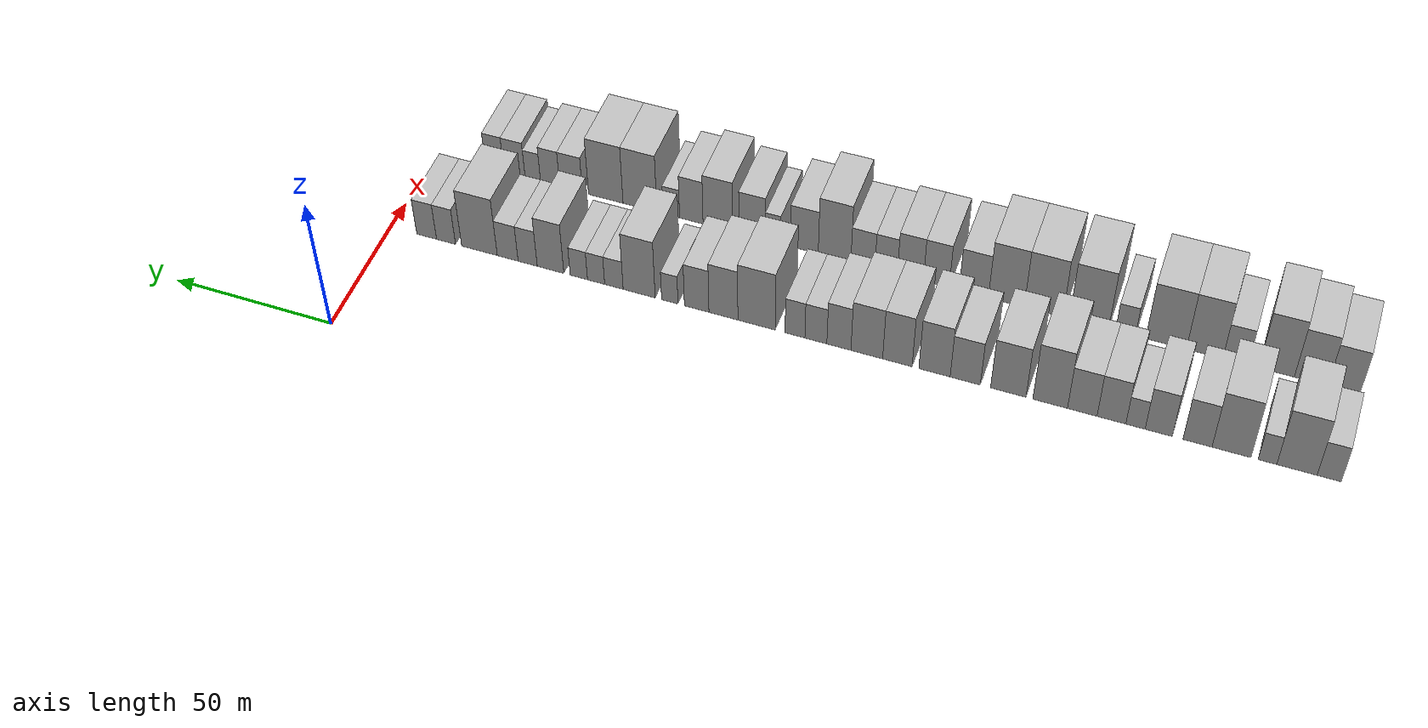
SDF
<sdf version="1.6">
 <world name="default">
  <model name="building_1">
   <static>1</static>
   <pose>50.0000 -280.7285 0 0.000000 0.000000 0.000000</pose>
   <link name="link">
    <pose>0 0 7.50 0 0 0</pose>
    <collision name="collision"><geometry><box><size>20.0000 6.5430 15.0000</size></box></geometry></collision>
    <visual name="visual">
     <cast_shadows>0</cast_shadows>
     <geometry><box><size>20.0000 6.5430 15.0000</size></box></geometry>
     <material>
      <script>
       <uri>model://HANNAS_wall/materials/scripts</uri>
       <uri>model://HANNAS_wall/materials/textures</uri>
       <name>vrc/HANNAS_wall</name>
      </script>
     </material>
    </visual>
   </link>
  </model>
  <model name="building_2">
   <static>1</static>
   <pose>50.0000 -271.9288 0 0.000000 0.000000 0.000000</pose>
   <link name="link">
    <pose>0 0 12.00 0 0 0</pose>
    <collision name="collision"><geometry><box><size>20.0000 11.0564 24.0000</size></box></geometry></collision>
    <visual name="visual">
     <cast_shadows>0</cast_shadows>
     <geometry><box><size>20.0000 11.0564 24.0000</size></box></geometry>
     <material>
      <script>
       <uri>model://HANNAS_wall/materials/scripts</uri>
       <uri>model://HANNAS_wall/materials/textures</uri>
       <name>vrc/HANNAS_wall</name>
      </script>
     </material>
    </visual>
   </link>
  </model>
  <model name="building_3">
   <static>1</static>
   <pose>50.0000 -263.8461 0 0.000000 0.000000 0.000000</pose>
   <link name="link">
    <pose>0 0 6.00 0 0 0</pose>
    <collision name="collision"><geometry><box><size>20.0000 5.1090 12.0000</size></box></geometry></collision>
    <visual name="visual">
     <cast_shadows>0</cast_shadows>
     <geometry><box><size>20.0000 5.1090 12.0000</size></box></geometry>
     <material>
      <script>
       <uri>model://HANNAS_wall/materials/scripts</uri>
       <uri>model://HANNAS_wall/materials/textures</uri>
       <name>vrc/HANNAS_wall</name>
      </script>
     </material>
    </visual>
   </link>
  </model>
  <model name="building_4">
   <static>1</static>
   <pose>50.0000 -253.8942 0 0.000000 0.000000 0.000000</pose>
   <link name="link">
    <pose>0 0 12.00 0 0 0</pose>
    <collision name="collision"><geometry><box><size>20.0000 10.7950 24.0000</size></box></geometry></collision>
    <visual name="visual">
     <cast_shadows>0</cast_shadows>
     <geometry><box><size>20.0000 10.7950 24.0000</size></box></geometry>
     <material>
      <script>
       <uri>model://HANNAS_wall/materials/scripts</uri>
       <uri>model://HANNAS_wall/materials/textures</uri>
       <name>vrc/HANNAS_wall</name>
      </script>
     </material>
    </visual>
   </link>
  </model>
  <model name="building_5">
   <static>1</static>
   <pose>50.0000 -244.4497 0 0.000000 0.000000 0.000000</pose>
   <link name="link">
    <pose>0 0 9.00 0 0 0</pose>
    <collision name="collision"><geometry><box><size>20.0000 8.0939 18.0000</size></box></geometry></collision>
    <visual name="visual">
     <cast_shadows>0</cast_shadows>
     <geometry><box><size>20.0000 8.0939 18.0000</size></box></geometry>
     <material>
      <script>
       <uri>model://HANNAS_wall/materials/scripts</uri>
       <uri>model://HANNAS_wall/materials/textures</uri>
       <name>vrc/HANNAS_wall</name>
      </script>
     </material>
    </visual>
   </link>
  </model>
  <model name="building_6">
   <static>1</static>
   <pose>50.0000 -233.5920 0 0.000000 0.000000 0.000000</pose>
   <link name="link">
    <pose>0 0 9.00 0 0 0</pose>
    <collision name="collision"><geometry><box><size>20.0000 7.6216 18.0000</size></box></geometry></collision>
    <visual name="visual">
     <cast_shadows>0</cast_shadows>
     <geometry><box><size>20.0000 7.6216 18.0000</size></box></geometry>
     <material>
      <script>
       <uri>model://HANNAS_wall/materials/scripts</uri>
       <uri>model://HANNAS_wall/materials/textures</uri>
       <name>vrc/HANNAS_wall</name>
      </script>
     </material>
    </visual>
   </link>
  </model>
  <model name="building_7">
   <static>1</static>
   <pose>50.0000 -227.0531 0 0.000000 0.000000 0.000000</pose>
   <link name="link">
    <pose>0 0 6.00 0 0 0</pose>
    <collision name="collision"><geometry><box><size>20.0000 5.4563 12.0000</size></box></geometry></collision>
    <visual name="visual">
     <cast_shadows>0</cast_shadows>
     <geometry><box><size>20.0000 5.4563 12.0000</size></box></geometry>
     <material>
      <script>
       <uri>model://HANNAS_wall/materials/scripts</uri>
       <uri>model://HANNAS_wall/materials/textures</uri>
       <name>vrc/HANNAS_wall</name>
      </script>
     </material>
    </visual>
   </link>
  </model>
  <model name="building_8">
   <static>1</static>
   <pose>50.0000 -220.2378 0 0.000000 0.000000 0.000000</pose>
   <link name="link">
    <pose>0 0 9.00 0 0 0</pose>
    <collision name="collision"><geometry><box><size>20.0000 8.1742 18.0000</size></box></geometry></collision>
    <visual name="visual">
     <cast_shadows>0</cast_shadows>
     <geometry><box><size>20.0000 8.1742 18.0000</size></box></geometry>
     <material>
      <script>
       <uri>model://HANNAS_wall/materials/scripts</uri>
       <uri>model://HANNAS_wall/materials/textures</uri>
       <name>vrc/HANNAS_wall</name>
      </script>
     </material>
    </visual>
   </link>
  </model>
  <model name="building_9">
   <static>1</static>
   <pose>50.0000 -211.9330 0 0.000000 0.000000 0.000000</pose>
   <link name="link">
    <pose>0 0 9.00 0 0 0</pose>
    <collision name="collision"><geometry><box><size>20.0000 8.4355 18.0000</size></box></geometry></collision>
    <visual name="visual">
     <cast_shadows>0</cast_shadows>
     <geometry><box><size>20.0000 8.4355 18.0000</size></box></geometry>
     <material>
      <script>
       <uri>model://HANNAS_wall/materials/scripts</uri>
       <uri>model://HANNAS_wall/materials/textures</uri>
       <name>vrc/HANNAS_wall</name>
      </script>
     </material>
    </visual>
   </link>
  </model>
  <model name="building_10">
   <static>1</static>
   <pose>50.0000 -202.7415 0 0.000000 0.000000 0.000000</pose>
   <link name="link">
    <pose>0 0 12.00 0 0 0</pose>
    <collision name="collision"><geometry><box><size>20.0000 9.9475 24.0000</size></box></geometry></collision>
    <visual name="visual">
     <cast_shadows>0</cast_shadows>
     <geometry><box><size>20.0000 9.9475 24.0000</size></box></geometry>
     <material>
      <script>
       <uri>model://HANNAS_wall/materials/scripts</uri>
       <uri>model://HANNAS_wall/materials/textures</uri>
       <name>vrc/HANNAS_wall</name>
      </script>
     </material>
    </visual>
   </link>
  </model>
  <model name="building_11">
   <static>1</static>
   <pose>50.0000 -190.6426 0 0.000000 0.000000 0.000000</pose>
   <link name="link">
    <pose>0 0 10.50 0 0 0</pose>
    <collision name="collision"><geometry><box><size>20.0000 10.2502 21.0000</size></box></geometry></collision>
    <visual name="visual">
     <cast_shadows>0</cast_shadows>
     <geometry><box><size>20.0000 10.2502 21.0000</size></box></geometry>
     <material>
      <script>
       <uri>model://HANNAS_wall/materials/scripts</uri>
       <uri>model://HANNAS_wall/materials/textures</uri>
       <name>vrc/HANNAS_wall</name>
      </script>
     </material>
    </visual>
   </link>
  </model>
  <model name="building_12">
   <static>1</static>
   <pose>50.0000 -178.1155 0 0.000000 0.000000 0.000000</pose>
   <link name="link">
    <pose>0 0 9.00 0 0 0</pose>
    <collision name="collision"><geometry><box><size>20.0000 8.8040 18.0000</size></box></geometry></collision>
    <visual name="visual">
     <cast_shadows>0</cast_shadows>
     <geometry><box><size>20.0000 8.8040 18.0000</size></box></geometry>
     <material>
      <script>
       <uri>model://HANNAS_wall/materials/scripts</uri>
       <uri>model://HANNAS_wall/materials/textures</uri>
       <name>vrc/HANNAS_wall</name>
      </script>
     </material>
    </visual>
   </link>
  </model>
  <model name="building_13">
   <static>1</static>
   <pose>50.0000 -169.1064 0 0.000000 0.000000 0.000000</pose>
   <link name="link">
    <pose>0 0 10.50 0 0 0</pose>
    <collision name="collision"><geometry><box><size>20.0000 9.2141 21.0000</size></box></geometry></collision>
    <visual name="visual">
     <cast_shadows>0</cast_shadows>
     <geometry><box><size>20.0000 9.2141 21.0000</size></box></geometry>
     <material>
      <script>
       <uri>model://HANNAS_wall/materials/scripts</uri>
       <uri>model://HANNAS_wall/materials/textures</uri>
       <name>vrc/HANNAS_wall</name>
      </script>
     </material>
    </visual>
   </link>
  </model>
  <model name="building_14">
   <static>1</static>
   <pose>50.0000 -158.1400 0 0.000000 0.000000 0.000000</pose>
   <link name="link">
    <pose>0 0 10.50 0 0 0</pose>
    <collision name="collision"><geometry><box><size>20.0000 8.7185 21.0000</size></box></geometry></collision>
    <visual name="visual">
     <cast_shadows>0</cast_shadows>
     <geometry><box><size>20.0000 8.7185 21.0000</size></box></geometry>
     <material>
      <script>
       <uri>model://HANNAS_wall/materials/scripts</uri>
       <uri>model://HANNAS_wall/materials/textures</uri>
       <name>vrc/HANNAS_wall</name>
      </script>
     </material>
    </visual>
   </link>
  </model>
  <model name="building_15">
   <static>1</static>
   <pose>50.0000 -149.0470 0 0.000000 0.000000 0.000000</pose>
   <link name="link">
    <pose>0 0 10.50 0 0 0</pose>
    <collision name="collision"><geometry><box><size>20.0000 9.4675 21.0000</size></box></geometry></collision>
    <visual name="visual">
     <cast_shadows>0</cast_shadows>
     <geometry><box><size>20.0000 9.4675 21.0000</size></box></geometry>
     <material>
      <script>
       <uri>model://HANNAS_wall/materials/scripts</uri>
       <uri>model://HANNAS_wall/materials/textures</uri>
       <name>vrc/HANNAS_wall</name>
      </script>
     </material>
    </visual>
   </link>
  </model>
  <model name="building_16">
   <static>1</static>
   <pose>50.0000 -140.7030 0 0.000000 0.000000 0.000000</pose>
   <link name="link">
    <pose>0 0 9.00 0 0 0</pose>
    <collision name="collision"><geometry><box><size>20.0000 7.2206 18.0000</size></box></geometry></collision>
    <visual name="visual">
     <cast_shadows>0</cast_shadows>
     <geometry><box><size>20.0000 7.2206 18.0000</size></box></geometry>
     <material>
      <script>
       <uri>model://HANNAS_wall/materials/scripts</uri>
       <uri>model://HANNAS_wall/materials/textures</uri>
       <name>vrc/HANNAS_wall</name>
      </script>
     </material>
    </visual>
   </link>
  </model>
  <model name="building_17">
   <static>1</static>
   <pose>50.0000 -133.7853 0 0.000000 0.000000 0.000000</pose>
   <link name="link">
    <pose>0 0 7.50 0 0 0</pose>
    <collision name="collision"><geometry><box><size>20.0000 6.6148 15.0000</size></box></geometry></collision>
    <visual name="visual">
     <cast_shadows>0</cast_shadows>
     <geometry><box><size>20.0000 6.6148 15.0000</size></box></geometry>
     <material>
      <script>
       <uri>model://HANNAS_wall/materials/scripts</uri>
       <uri>model://HANNAS_wall/materials/textures</uri>
       <name>vrc/HANNAS_wall</name>
      </script>
     </material>
    </visual>
   </link>
  </model>
  <model name="building_18">
   <static>1</static>
   <pose>50.0000 -127.4758 0 0.000000 0.000000 0.000000</pose>
   <link name="link">
    <pose>0 0 7.50 0 0 0</pose>
    <collision name="collision"><geometry><box><size>20.0000 6.0041 15.0000</size></box></geometry></collision>
    <visual name="visual">
     <cast_shadows>0</cast_shadows>
     <geometry><box><size>20.0000 6.0041 15.0000</size></box></geometry>
     <material>
      <script>
       <uri>model://HANNAS_wall/materials/scripts</uri>
       <uri>model://HANNAS_wall/materials/textures</uri>
       <name>vrc/HANNAS_wall</name>
      </script>
     </material>
    </visual>
   </link>
  </model>
  <model name="building_19">
   <static>1</static>
   <pose>50.0000 -115.7782 0 0.000000 0.000000 0.000000</pose>
   <link name="link">
    <pose>0 0 12.00 0 0 0</pose>
    <collision name="collision"><geometry><box><size>20.0000 11.3912 24.0000</size></box></geometry></collision>
    <visual name="visual">
     <cast_shadows>0</cast_shadows>
     <geometry><box><size>20.0000 11.3912 24.0000</size></box></geometry>
     <material>
      <script>
       <uri>model://HANNAS_wall/materials/scripts</uri>
       <uri>model://HANNAS_wall/materials/textures</uri>
       <name>vrc/HANNAS_wall</name>
      </script>
     </material>
    </visual>
   </link>
  </model>
  <model name="building_20">
   <static>1</static>
   <pose>50.0000 -105.6370 0 0.000000 0.000000 0.000000</pose>
   <link name="link">
    <pose>0 0 10.50 0 0 0</pose>
    <collision name="collision"><geometry><box><size>20.0000 8.8911 21.0000</size></box></geometry></collision>
    <visual name="visual">
     <cast_shadows>0</cast_shadows>
     <geometry><box><size>20.0000 8.8911 21.0000</size></box></geometry>
     <material>
      <script>
       <uri>model://HANNAS_wall/materials/scripts</uri>
       <uri>model://HANNAS_wall/materials/textures</uri>
       <name>vrc/HANNAS_wall</name>
      </script>
     </material>
    </visual>
   </link>
  </model>
  <model name="building_21">
   <static>1</static>
   <pose>50.0000 -97.4049 0 0.000000 0.000000 0.000000</pose>
   <link name="link">
    <pose>0 0 9.00 0 0 0</pose>
    <collision name="collision"><geometry><box><size>20.0000 7.5730 18.0000</size></box></geometry></collision>
    <visual name="visual">
     <cast_shadows>0</cast_shadows>
     <geometry><box><size>20.0000 7.5730 18.0000</size></box></geometry>
     <material>
      <script>
       <uri>model://HANNAS_wall/materials/scripts</uri>
       <uri>model://HANNAS_wall/materials/textures</uri>
       <name>vrc/HANNAS_wall</name>
      </script>
     </material>
    </visual>
   </link>
  </model>
  <model name="building_22">
   <static>1</static>
   <pose>50.0000 -89.0741 0 0.000000 0.000000 0.000000</pose>
   <link name="link">
    <pose>0 0 6.00 0 0 0</pose>
    <collision name="collision"><geometry><box><size>20.0000 5.0886 12.0000</size></box></geometry></collision>
    <visual name="visual">
     <cast_shadows>0</cast_shadows>
     <geometry><box><size>20.0000 5.0886 12.0000</size></box></geometry>
     <material>
      <script>
       <uri>model://HANNAS_wall/materials/scripts</uri>
       <uri>model://HANNAS_wall/materials/textures</uri>
       <name>vrc/HANNAS_wall</name>
      </script>
     </material>
    </visual>
   </link>
  </model>
  <model name="building_23">
   <static>1</static>
   <pose>50.0000 -79.5198 0 0.000000 0.000000 0.000000</pose>
   <link name="link">
    <pose>0 0 12.00 0 0 0</pose>
    <collision name="collision"><geometry><box><size>20.0000 10.0201 24.0000</size></box></geometry></collision>
    <visual name="visual">
     <cast_shadows>0</cast_shadows>
     <geometry><box><size>20.0000 10.0201 24.0000</size></box></geometry>
     <material>
      <script>
       <uri>model://HANNAS_wall/materials/scripts</uri>
       <uri>model://HANNAS_wall/materials/textures</uri>
       <name>vrc/HANNAS_wall</name>
      </script>
     </material>
    </visual>
   </link>
  </model>
  <model name="building_24">
   <static>1</static>
   <pose>50.0000 -71.6095 0 0.000000 0.000000 0.000000</pose>
   <link name="link">
    <pose>0 0 6.00 0 0 0</pose>
    <collision name="collision"><geometry><box><size>20.0000 5.8004 12.0000</size></box></geometry></collision>
    <visual name="visual">
     <cast_shadows>0</cast_shadows>
     <geometry><box><size>20.0000 5.8004 12.0000</size></box></geometry>
     <material>
      <script>
       <uri>model://HANNAS_wall/materials/scripts</uri>
       <uri>model://HANNAS_wall/materials/textures</uri>
       <name>vrc/HANNAS_wall</name>
      </script>
     </material>
    </visual>
   </link>
  </model>
  <model name="building_25">
   <static>1</static>
   <pose>50.0000 -65.9958 0 0.000000 0.000000 0.000000</pose>
   <link name="link">
    <pose>0 0 6.00 0 0 0</pose>
    <collision name="collision"><geometry><box><size>20.0000 5.4270 12.0000</size></box></geometry></collision>
    <visual name="visual">
     <cast_shadows>0</cast_shadows>
     <geometry><box><size>20.0000 5.4270 12.0000</size></box></geometry>
     <material>
      <script>
       <uri>model://HANNAS_wall/materials/scripts</uri>
       <uri>model://HANNAS_wall/materials/textures</uri>
       <name>vrc/HANNAS_wall</name>
      </script>
     </material>
    </visual>
   </link>
  </model>
  <model name="building_26">
   <static>1</static>
   <pose>50.0000 -60.5416 0 0.000000 0.000000 0.000000</pose>
   <link name="link">
    <pose>0 0 6.00 0 0 0</pose>
    <collision name="collision"><geometry><box><size>20.0000 5.4814 12.0000</size></box></geometry></collision>
    <visual name="visual">
     <cast_shadows>0</cast_shadows>
     <geometry><box><size>20.0000 5.4814 12.0000</size></box></geometry>
     <material>
      <script>
       <uri>model://HANNAS_wall/materials/scripts</uri>
       <uri>model://HANNAS_wall/materials/textures</uri>
       <name>vrc/HANNAS_wall</name>
      </script>
     </material>
    </visual>
   </link>
  </model>
  <model name="building_27">
   <static>1</static>
   <pose>50.0000 -51.5552 0 0.000000 0.000000 0.000000</pose>
   <link name="link">
    <pose>0 0 10.50 0 0 0</pose>
    <collision name="collision"><geometry><box><size>20.0000 8.4914 21.0000</size></box></geometry></collision>
    <visual name="visual">
     <cast_shadows>0</cast_shadows>
     <geometry><box><size>20.0000 8.4914 21.0000</size></box></geometry>
     <material>
      <script>
       <uri>model://HANNAS_wall/materials/scripts</uri>
       <uri>model://HANNAS_wall/materials/textures</uri>
       <name>vrc/HANNAS_wall</name>
      </script>
     </material>
    </visual>
   </link>
  </model>
  <model name="building_28">
   <static>1</static>
   <pose>50.0000 -44.2493 0 0.000000 0.000000 0.000000</pose>
   <link name="link">
    <pose>0 0 7.50 0 0 0</pose>
    <collision name="collision"><geometry><box><size>20.0000 6.1206 15.0000</size></box></geometry></collision>
    <visual name="visual">
     <cast_shadows>0</cast_shadows>
     <geometry><box><size>20.0000 6.1206 15.0000</size></box></geometry>
     <material>
      <script>
       <uri>model://HANNAS_wall/materials/scripts</uri>
       <uri>model://HANNAS_wall/materials/textures</uri>
       <name>vrc/HANNAS_wall</name>
      </script>
     </material>
    </visual>
   </link>
  </model>
  <model name="building_29">
   <static>1</static>
   <pose>50.0000 -37.8376 0 0.000000 0.000000 0.000000</pose>
   <link name="link">
    <pose>0 0 7.50 0 0 0</pose>
    <collision name="collision"><geometry><box><size>20.0000 6.7027 15.0000</size></box></geometry></collision>
    <visual name="visual">
     <cast_shadows>0</cast_shadows>
     <geometry><box><size>20.0000 6.7027 15.0000</size></box></geometry>
     <material>
      <script>
       <uri>model://HANNAS_wall/materials/scripts</uri>
       <uri>model://HANNAS_wall/materials/textures</uri>
       <name>vrc/HANNAS_wall</name>
      </script>
     </material>
    </visual>
   </link>
  </model>
  <model name="building_30">
   <static>1</static>
   <pose>50.0000 -28.7276 0 0.000000 0.000000 0.000000</pose>
   <link name="link">
    <pose>0 0 12.00 0 0 0</pose>
    <collision name="collision"><geometry><box><size>20.0000 11.5173 24.0000</size></box></geometry></collision>
    <visual name="visual">
     <cast_shadows>0</cast_shadows>
     <geometry><box><size>20.0000 11.5173 24.0000</size></box></geometry>
     <material>
      <script>
       <uri>model://HANNAS_wall/materials/scripts</uri>
       <uri>model://HANNAS_wall/materials/textures</uri>
       <name>vrc/HANNAS_wall</name>
      </script>
     </material>
    </visual>
   </link>
  </model>
  <model name="building_31">
   <static>1</static>
   <pose>50.0000 -17.8754 0 0.000000 0.000000 0.000000</pose>
   <link name="link">
    <pose>0 0 7.50 0 0 0</pose>
    <collision name="collision"><geometry><box><size>20.0000 6.1872 15.0000</size></box></geometry></collision>
    <visual name="visual">
     <cast_shadows>0</cast_shadows>
     <geometry><box><size>20.0000 6.1872 15.0000</size></box></geometry>
     <material>
      <script>
       <uri>model://HANNAS_wall/materials/scripts</uri>
       <uri>model://HANNAS_wall/materials/textures</uri>
       <name>vrc/HANNAS_wall</name>
      </script>
     </material>
    </visual>
   </link>
  </model>
  <model name="building_32">
   <static>1</static>
   <pose>50.0000 -11.5547 0 0.000000 0.000000 0.000000</pose>
   <link name="link">
    <pose>0 0 7.50 0 0 0</pose>
    <collision name="collision"><geometry><box><size>20.0000 6.4543 15.0000</size></box></geometry></collision>
    <visual name="visual">
     <cast_shadows>0</cast_shadows>
     <geometry><box><size>20.0000 6.4543 15.0000</size></box></geometry>
     <material>
      <script>
       <uri>model://HANNAS_wall/materials/scripts</uri>
       <uri>model://HANNAS_wall/materials/textures</uri>
       <name>vrc/HANNAS_wall</name>
      </script>
     </material>
    </visual>
   </link>
  </model>
  <model name="building_63">
   <static>1</static>
   <pose>82.0000 -279.5156 0 0.000000 0.000000 0.000000</pose>
   <link name="link">
    <pose>0 0 9.00 0 0 0</pose>
    <collision name="collision"><geometry><box><size>20.0000 8.9687 18.0000</size></box></geometry></collision>
    <visual name="visual">
     <cast_shadows>0</cast_shadows>
     <geometry><box><size>20.0000 8.9687 18.0000</size></box></geometry>
     <material>
      <script>
       <uri>model://HANNAS_wall/materials/scripts</uri>
       <uri>model://HANNAS_wall/materials/textures</uri>
       <name>vrc/HANNAS_wall</name>
      </script>
     </material>
    </visual>
   </link>
  </model>
  <model name="building_64">
   <static>1</static>
   <pose>82.0000 -270.2996 0 0.000000 0.000000 0.000000</pose>
   <link name="link">
    <pose>0 0 10.50 0 0 0</pose>
    <collision name="collision"><geometry><box><size>20.0000 9.4635 21.0000</size></box></geometry></collision>
    <visual name="visual">
     <cast_shadows>0</cast_shadows>
     <geometry><box><size>20.0000 9.4635 21.0000</size></box></geometry>
     <material>
      <script>
       <uri>model://HANNAS_wall/materials/scripts</uri>
       <uri>model://HANNAS_wall/materials/textures</uri>
       <name>vrc/HANNAS_wall</name>
      </script>
     </material>
    </visual>
   </link>
  </model>
  <model name="building_65">
   <static>1</static>
   <pose>82.0000 -260.5115 0 0.000000 0.000000 0.000000</pose>
   <link name="link">
    <pose>0 0 12.00 0 0 0</pose>
    <collision name="collision"><geometry><box><size>20.0000 10.1127 24.0000</size></box></geometry></collision>
    <visual name="visual">
     <cast_shadows>0</cast_shadows>
     <geometry><box><size>20.0000 10.1127 24.0000</size></box></geometry>
     <material>
      <script>
       <uri>model://HANNAS_wall/materials/scripts</uri>
       <uri>model://HANNAS_wall/materials/textures</uri>
       <name>vrc/HANNAS_wall</name>
      </script>
     </material>
    </visual>
   </link>
  </model>
  <model name="building_66">
   <static>1</static>
   <pose>82.0000 -248.8087 0 0.000000 0.000000 0.000000</pose>
   <link name="link">
    <pose>0 0 7.50 0 0 0</pose>
    <collision name="collision"><geometry><box><size>20.0000 7.2929 15.0000</size></box></geometry></collision>
    <visual name="visual">
     <cast_shadows>0</cast_shadows>
     <geometry><box><size>20.0000 7.2929 15.0000</size></box></geometry>
     <material>
      <script>
       <uri>model://HANNAS_wall/materials/scripts</uri>
       <uri>model://HANNAS_wall/materials/textures</uri>
       <name>vrc/HANNAS_wall</name>
      </script>
     </material>
    </visual>
   </link>
  </model>
  <model name="building_67">
   <static>1</static>
   <pose>82.0000 -239.9047 0 0.000000 0.000000 0.000000</pose>
   <link name="link">
    <pose>0 0 12.00 0 0 0</pose>
    <collision name="collision"><geometry><box><size>20.0000 10.5150 24.0000</size></box></geometry></collision>
    <visual name="visual">
     <cast_shadows>0</cast_shadows>
     <geometry><box><size>20.0000 10.5150 24.0000</size></box></geometry>
     <material>
      <script>
       <uri>model://HANNAS_wall/materials/scripts</uri>
       <uri>model://HANNAS_wall/materials/textures</uri>
       <name>vrc/HANNAS_wall</name>
      </script>
     </material>
    </visual>
   </link>
  </model>
  <model name="building_68">
   <static>1</static>
   <pose>82.0000 -228.7389 0 0.000000 0.000000 0.000000</pose>
   <link name="link">
    <pose>0 0 12.00 0 0 0</pose>
    <collision name="collision"><geometry><box><size>20.0000 11.8166 24.0000</size></box></geometry></collision>
    <visual name="visual">
     <cast_shadows>0</cast_shadows>
     <geometry><box><size>20.0000 11.8166 24.0000</size></box></geometry>
     <material>
      <script>
       <uri>model://HANNAS_wall/materials/scripts</uri>
       <uri>model://HANNAS_wall/materials/textures</uri>
       <name>vrc/HANNAS_wall</name>
      </script>
     </material>
    </visual>
   </link>
  </model>
  <model name="building_69">
   <static>1</static>
   <pose>82.0000 -216.9084 0 0.000000 0.000000 0.000000</pose>
   <link name="link">
    <pose>0 0 6.00 0 0 0</pose>
    <collision name="collision"><geometry><box><size>20.0000 5.8445 12.0000</size></box></geometry></collision>
    <visual name="visual">
     <cast_shadows>0</cast_shadows>
     <geometry><box><size>20.0000 5.8445 12.0000</size></box></geometry>
     <material>
      <script>
       <uri>model://HANNAS_wall/materials/scripts</uri>
       <uri>model://HANNAS_wall/materials/textures</uri>
       <name>vrc/HANNAS_wall</name>
      </script>
     </material>
    </visual>
   </link>
  </model>
  <model name="building_70">
   <static>1</static>
   <pose>82.0000 -206.1798 0 0.000000 0.000000 0.000000</pose>
   <link name="link">
    <pose>0 0 12.00 0 0 0</pose>
    <collision name="collision"><geometry><box><size>20.0000 11.6127 24.0000</size></box></geometry></collision>
    <visual name="visual">
     <cast_shadows>0</cast_shadows>
     <geometry><box><size>20.0000 11.6127 24.0000</size></box></geometry>
     <material>
      <script>
       <uri>model://HANNAS_wall/materials/scripts</uri>
       <uri>model://HANNAS_wall/materials/textures</uri>
       <name>vrc/HANNAS_wall</name>
      </script>
     </material>
    </visual>
   </link>
  </model>
  <model name="building_71">
   <static>1</static>
   <pose>82.0000 -192.6436 0 0.000000 0.000000 0.000000</pose>
   <link name="link">
    <pose>0 0 12.00 0 0 0</pose>
    <collision name="collision"><geometry><box><size>20.0000 11.4597 24.0000</size></box></geometry></collision>
    <visual name="visual">
     <cast_shadows>0</cast_shadows>
     <geometry><box><size>20.0000 11.4597 24.0000</size></box></geometry>
     <material>
      <script>
       <uri>model://HANNAS_wall/materials/scripts</uri>
       <uri>model://HANNAS_wall/materials/textures</uri>
       <name>vrc/HANNAS_wall</name>
      </script>
     </material>
    </visual>
   </link>
  </model>
  <model name="building_72">
   <static>1</static>
   <pose>82.0000 -181.5321 0 0.000000 0.000000 0.000000</pose>
   <link name="link">
    <pose>0 0 12.00 0 0 0</pose>
    <collision name="collision"><geometry><box><size>20.0000 10.7633 24.0000</size></box></geometry></collision>
    <visual name="visual">
     <cast_shadows>0</cast_shadows>
     <geometry><box><size>20.0000 10.7633 24.0000</size></box></geometry>
     <material>
      <script>
       <uri>model://HANNAS_wall/materials/scripts</uri>
       <uri>model://HANNAS_wall/materials/textures</uri>
       <name>vrc/HANNAS_wall</name>
      </script>
     </material>
    </visual>
   </link>
  </model>
  <model name="building_73">
   <static>1</static>
   <pose>82.0000 -171.7453 0 0.000000 0.000000 0.000000</pose>
   <link name="link">
    <pose>0 0 9.00 0 0 0</pose>
    <collision name="collision"><geometry><box><size>20.0000 8.8104 18.0000</size></box></geometry></collision>
    <visual name="visual">
     <cast_shadows>0</cast_shadows>
     <geometry><box><size>20.0000 8.8104 18.0000</size></box></geometry>
     <material>
      <script>
       <uri>model://HANNAS_wall/materials/scripts</uri>
       <uri>model://HANNAS_wall/materials/textures</uri>
       <name>vrc/HANNAS_wall</name>
      </script>
     </material>
    </visual>
   </link>
  </model>
  <model name="building_74">
   <static>1</static>
   <pose>82.0000 -160.4064 0 0.000000 0.000000 0.000000</pose>
   <link name="link">
    <pose>0 0 9.00 0 0 0</pose>
    <collision name="collision"><geometry><box><size>20.0000 7.8674 18.0000</size></box></geometry></collision>
    <visual name="visual">
     <cast_shadows>0</cast_shadows>
     <geometry><box><size>20.0000 7.8674 18.0000</size></box></geometry>
     <material>
      <script>
       <uri>model://HANNAS_wall/materials/scripts</uri>
       <uri>model://HANNAS_wall/materials/textures</uri>
       <name>vrc/HANNAS_wall</name>
      </script>
     </material>
    </visual>
   </link>
  </model>
  <model name="building_75">
   <static>1</static>
   <pose>82.0000 -152.4900 0 0.000000 0.000000 0.000000</pose>
   <link name="link">
    <pose>0 0 9.00 0 0 0</pose>
    <collision name="collision"><geometry><box><size>20.0000 7.9653 18.0000</size></box></geometry></collision>
    <visual name="visual">
     <cast_shadows>0</cast_shadows>
     <geometry><box><size>20.0000 7.9653 18.0000</size></box></geometry>
     <material>
      <script>
       <uri>model://HANNAS_wall/materials/scripts</uri>
       <uri>model://HANNAS_wall/materials/textures</uri>
       <name>vrc/HANNAS_wall</name>
      </script>
     </material>
    </visual>
   </link>
  </model>
  <model name="building_76">
   <static>1</static>
   <pose>82.0000 -145.0527 0 0.000000 0.000000 0.000000</pose>
   <link name="link">
    <pose>0 0 7.50 0 0 0</pose>
    <collision name="collision"><geometry><box><size>20.0000 6.9092 15.0000</size></box></geometry></collision>
    <visual name="visual">
     <cast_shadows>0</cast_shadows>
     <geometry><box><size>20.0000 6.9092 15.0000</size></box></geometry>
     <material>
      <script>
       <uri>model://HANNAS_wall/materials/scripts</uri>
       <uri>model://HANNAS_wall/materials/textures</uri>
       <name>vrc/HANNAS_wall</name>
      </script>
     </material>
    </visual>
   </link>
  </model>
  <model name="building_77">
   <static>1</static>
   <pose>82.0000 -137.8877 0 0.000000 0.000000 0.000000</pose>
   <link name="link">
    <pose>0 0 7.50 0 0 0</pose>
    <collision name="collision"><geometry><box><size>20.0000 7.4210 15.0000</size></box></geometry></collision>
    <visual name="visual">
     <cast_shadows>0</cast_shadows>
     <geometry><box><size>20.0000 7.4210 15.0000</size></box></geometry>
     <material>
      <script>
       <uri>model://HANNAS_wall/materials/scripts</uri>
       <uri>model://HANNAS_wall/materials/textures</uri>
       <name>vrc/HANNAS_wall</name>
      </script>
     </material>
    </visual>
   </link>
  </model>
  <model name="building_78">
   <static>1</static>
   <pose>82.0000 -129.1051 0 0.000000 0.000000 0.000000</pose>
   <link name="link">
    <pose>0 0 12.00 0 0 0</pose>
    <collision name="collision"><geometry><box><size>20.0000 10.1441 24.0000</size></box></geometry></collision>
    <visual name="visual">
     <cast_shadows>0</cast_shadows>
     <geometry><box><size>20.0000 10.1441 24.0000</size></box></geometry>
     <material>
      <script>
       <uri>model://HANNAS_wall/materials/scripts</uri>
       <uri>model://HANNAS_wall/materials/textures</uri>
       <name>vrc/HANNAS_wall</name>
      </script>
     </material>
    </visual>
   </link>
  </model>
  <model name="building_79">
   <static>1</static>
   <pose>82.0000 -119.6662 0 0.000000 0.000000 0.000000</pose>
   <link name="link">
    <pose>0 0 9.00 0 0 0</pose>
    <collision name="collision"><geometry><box><size>20.0000 8.7337 18.0000</size></box></geometry></collision>
    <visual name="visual">
     <cast_shadows>0</cast_shadows>
     <geometry><box><size>20.0000 8.7337 18.0000</size></box></geometry>
     <material>
      <script>
       <uri>model://HANNAS_wall/materials/scripts</uri>
       <uri>model://HANNAS_wall/materials/textures</uri>
       <name>vrc/HANNAS_wall</name>
      </script>
     </material>
    </visual>
   </link>
  </model>
  <model name="building_80">
   <static>1</static>
   <pose>82.0000 -109.8791 0 0.000000 0.000000 0.000000</pose>
   <link name="link">
    <pose>0 0 6.00 0 0 0</pose>
    <collision name="collision"><geometry><box><size>20.0000 4.8406 12.0000</size></box></geometry></collision>
    <visual name="visual">
     <cast_shadows>0</cast_shadows>
     <geometry><box><size>20.0000 4.8406 12.0000</size></box></geometry>
     <material>
      <script>
       <uri>model://HANNAS_wall/materials/scripts</uri>
       <uri>model://HANNAS_wall/materials/textures</uri>
       <name>vrc/HANNAS_wall</name>
      </script>
     </material>
    </visual>
   </link>
  </model>
  <model name="building_81">
   <static>1</static>
   <pose>82.0000 -103.2753 0 0.000000 0.000000 0.000000</pose>
   <link name="link">
    <pose>0 0 9.00 0 0 0</pose>
    <collision name="collision"><geometry><box><size>20.0000 8.3670 18.0000</size></box></geometry></collision>
    <visual name="visual">
     <cast_shadows>0</cast_shadows>
     <geometry><box><size>20.0000 8.3670 18.0000</size></box></geometry>
     <material>
      <script>
       <uri>model://HANNAS_wall/materials/scripts</uri>
       <uri>model://HANNAS_wall/materials/textures</uri>
       <name>vrc/HANNAS_wall</name>
      </script>
     </material>
    </visual>
   </link>
  </model>
  <model name="building_82">
   <static>1</static>
   <pose>82.0000 -92.3901 0 0.000000 0.000000 0.000000</pose>
   <link name="link">
    <pose>0 0 10.50 0 0 0</pose>
    <collision name="collision"><geometry><box><size>20.0000 9.4034 21.0000</size></box></geometry></collision>
    <visual name="visual">
     <cast_shadows>0</cast_shadows>
     <geometry><box><size>20.0000 9.4034 21.0000</size></box></geometry>
     <material>
      <script>
       <uri>model://HANNAS_wall/materials/scripts</uri>
       <uri>model://HANNAS_wall/materials/textures</uri>
       <name>vrc/HANNAS_wall</name>
      </script>
     </material>
    </visual>
   </link>
  </model>
  <model name="building_83">
   <static>1</static>
   <pose>82.0000 -83.9384 0 0.000000 0.000000 0.000000</pose>
   <link name="link">
    <pose>0 0 9.00 0 0 0</pose>
    <collision name="collision"><geometry><box><size>20.0000 7.5000 18.0000</size></box></geometry></collision>
    <visual name="visual">
     <cast_shadows>0</cast_shadows>
     <geometry><box><size>20.0000 7.5000 18.0000</size></box></geometry>
     <material>
      <script>
       <uri>model://HANNAS_wall/materials/scripts</uri>
       <uri>model://HANNAS_wall/materials/textures</uri>
       <name>vrc/HANNAS_wall</name>
      </script>
     </material>
    </visual>
   </link>
  </model>
  <model name="building_84">
   <static>1</static>
   <pose>82.0000 -77.5324 0 0.000000 0.000000 0.000000</pose>
   <link name="link">
    <pose>0 0 6.00 0 0 0</pose>
    <collision name="collision"><geometry><box><size>20.0000 5.3120 12.0000</size></box></geometry></collision>
    <visual name="visual">
     <cast_shadows>0</cast_shadows>
     <geometry><box><size>20.0000 5.3120 12.0000</size></box></geometry>
     <material>
      <script>
       <uri>model://HANNAS_wall/materials/scripts</uri>
       <uri>model://HANNAS_wall/materials/textures</uri>
       <name>vrc/HANNAS_wall</name>
      </script>
     </material>
    </visual>
   </link>
  </model>
  <model name="building_85">
   <static>1</static>
   <pose>82.0000 -67.4004 0 0.000000 0.000000 0.000000</pose>
   <link name="link">
    <pose>0 0 12.00 0 0 0</pose>
    <collision name="collision"><geometry><box><size>20.0000 10.9521 24.0000</size></box></geometry></collision>
    <visual name="visual">
     <cast_shadows>0</cast_shadows>
     <geometry><box><size>20.0000 10.9521 24.0000</size></box></geometry>
     <material>
      <script>
       <uri>model://HANNAS_wall/materials/scripts</uri>
       <uri>model://HANNAS_wall/materials/textures</uri>
       <name>vrc/HANNAS_wall</name>
      </script>
     </material>
    </visual>
   </link>
  </model>
  <model name="building_86">
   <static>1</static>
   <pose>82.0000 -56.2996 0 0.000000 0.000000 0.000000</pose>
   <link name="link">
    <pose>0 0 12.00 0 0 0</pose>
    <collision name="collision"><geometry><box><size>20.0000 11.2494 24.0000</size></box></geometry></collision>
    <visual name="visual">
     <cast_shadows>0</cast_shadows>
     <geometry><box><size>20.0000 11.2494 24.0000</size></box></geometry>
     <material>
      <script>
       <uri>model://HANNAS_wall/materials/scripts</uri>
       <uri>model://HANNAS_wall/materials/textures</uri>
       <name>vrc/HANNAS_wall</name>
      </script>
     </material>
    </visual>
   </link>
  </model>
  <model name="building_87">
   <static>1</static>
   <pose>82.0000 -44.9537 0 0.000000 0.000000 0.000000</pose>
   <link name="link">
    <pose>0 0 7.50 0 0 0</pose>
    <collision name="collision"><geometry><box><size>20.0000 7.4425 15.0000</size></box></geometry></collision>
    <visual name="visual">
     <cast_shadows>0</cast_shadows>
     <geometry><box><size>20.0000 7.4425 15.0000</size></box></geometry>
     <material>
      <script>
       <uri>model://HANNAS_wall/materials/scripts</uri>
       <uri>model://HANNAS_wall/materials/textures</uri>
       <name>vrc/HANNAS_wall</name>
      </script>
     </material>
    </visual>
   </link>
  </model>
  <model name="building_88">
   <static>1</static>
   <pose>82.0000 -38.0687 0 0.000000 0.000000 0.000000</pose>
   <link name="link">
    <pose>0 0 7.50 0 0 0</pose>
    <collision name="collision"><geometry><box><size>20.0000 6.3276 15.0000</size></box></geometry></collision>
    <visual name="visual">
     <cast_shadows>0</cast_shadows>
     <geometry><box><size>20.0000 6.3276 15.0000</size></box></geometry>
     <material>
      <script>
       <uri>model://HANNAS_wall/materials/scripts</uri>
       <uri>model://HANNAS_wall/materials/textures</uri>
       <name>vrc/HANNAS_wall</name>
      </script>
     </material>
    </visual>
   </link>
  </model>
  <model name="building_89">
   <static>1</static>
   <pose>82.0000 -32.3458 0 0.000000 0.000000 0.000000</pose>
   <link name="link">
    <pose>0 0 6.00 0 0 0</pose>
    <collision name="collision"><geometry><box><size>20.0000 5.1181 12.0000</size></box></geometry></collision>
    <visual name="visual">
     <cast_shadows>0</cast_shadows>
     <geometry><box><size>20.0000 5.1181 12.0000</size></box></geometry>
     <material>
      <script>
       <uri>model://HANNAS_wall/materials/scripts</uri>
       <uri>model://HANNAS_wall/materials/textures</uri>
       <name>vrc/HANNAS_wall</name>
      </script>
     </material>
    </visual>
   </link>
  </model>
  <model name="building_90">
   <static>1</static>
   <pose>82.0000 -26.2811 0 0.000000 0.000000 0.000000</pose>
   <link name="link">
    <pose>0 0 7.50 0 0 0</pose>
    <collision name="collision"><geometry><box><size>20.0000 7.0113 15.0000</size></box></geometry></collision>
    <visual name="visual">
     <cast_shadows>0</cast_shadows>
     <geometry><box><size>20.0000 7.0113 15.0000</size></box></geometry>
     <material>
      <script>
       <uri>model://HANNAS_wall/materials/scripts</uri>
       <uri>model://HANNAS_wall/materials/textures</uri>
       <name>vrc/HANNAS_wall</name>
      </script>
     </material>
    </visual>
   </link>
  </model>
  <model name="building_91">
   <static>1</static>
   <pose>82.0000 -19.7338 0 0.000000 0.000000 0.000000</pose>
   <link name="link">
    <pose>0 0 7.50 0 0 0</pose>
    <collision name="collision"><geometry><box><size>20.0000 6.0832 15.0000</size></box></geometry></collision>
    <visual name="visual">
     <cast_shadows>0</cast_shadows>
     <geometry><box><size>20.0000 6.0832 15.0000</size></box></geometry>
     <material>
      <script>
       <uri>model://HANNAS_wall/materials/scripts</uri>
       <uri>model://HANNAS_wall/materials/textures</uri>
       <name>vrc/HANNAS_wall</name>
      </script>
     </material>
    </visual>
   </link>
  </model>
 </world>
</sdf>
